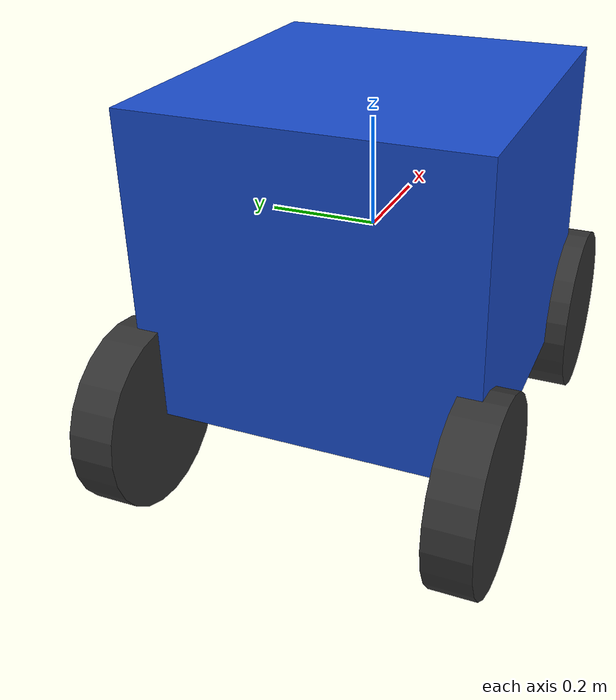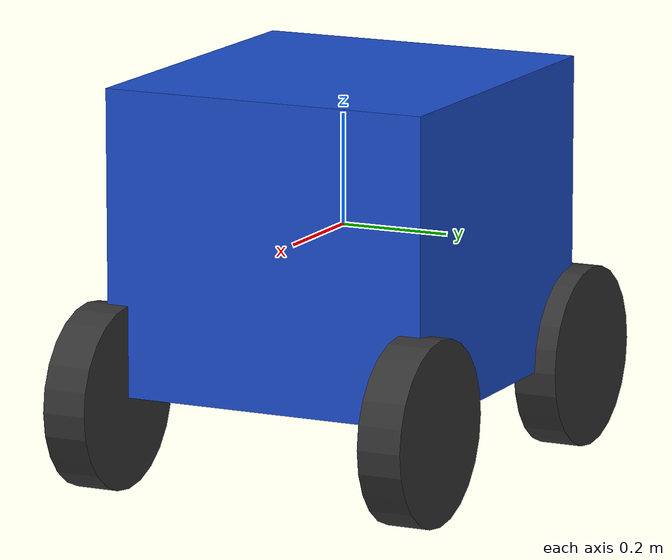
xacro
<?xml version="1.0"?>
<robot name="hunter_robot" xmlns:xacro="http://www.ros.org/wiki/xacro">

  <!-- Hunter 차량 상수 -->
  <xacro:property name="PI" value="3.1415926535897931"/>
  <xacro:property name="wheelbase" value="0.65"/>  <!-- Hunter wheelbase -->
  <xacro:property name="track" value="0.605"/>     <!-- Hunter track -->
  <xacro:property name="wheel_radius" value="0.165"/> <!-- Hunter wheel radius -->
  <xacro:property name="vehicle_height" value="0.55"/>
  <xacro:property name="lidar_height" value="0.1"/>  <!-- IMU 위로 10cm -->

  <!-- IMU Link (LIO-SAM에서 실제 base_link 역할, TF tree의 최상위) -->
  <link name="imu_link">
    <visual>
      <geometry>
        <box size="${wheelbase} ${track} ${vehicle_height}"/>
      </geometry>
      <material name="hunter_blue">
        <color rgba="0.1 0.3 0.8 1"/>
      </material>
    </visual>
    <collision>
      <geometry>
        <box size="${wheelbase} ${track} ${vehicle_height}"/>
      </geometry>
    </collision>
    <inertial>
      <mass value="80"/>
      <inertia ixx="5.0" ixy="0.0" ixz="0.0" iyy="8.0" iyz="0.0" izz="10.0"/>
    </inertial>
  </link>

  <!-- Base Link (시각화용, imu_link와 동일한 위치) -->
  <link name="base_link">
    <visual>
      <geometry>
        <box size="0.05 0.05 0.02"/>
      </geometry>
      <material name="red">
        <color rgba="0.8 0.2 0.2 1"/>
      </material>
    </visual>
  </link>

  <joint name="imu_to_base" type="fixed">
    <parent link="imu_link"/>
    <child link="base_link"/>
    <origin xyz="0 0 0" rpy="0 0 0"/> <!-- 동일한 위치 -->
  </joint>

  <!-- LiDAR 센서 프레임 -->
  <link name="os_sensor">
    <visual>
      <geometry>
        <cylinder radius="0.06" length="0.08"/>
      </geometry>
      <material name="black">
        <color rgba="0.1 0.1 0.1 1"/>
      </material>
    </visual>
  </link>

  <joint name="os_sensor_joint" type="fixed">
    <parent link="imu_link"/>
    <child link="os_sensor"/>
    <origin xyz="0 0 ${lidar_height}" rpy="0 0 0"/> <!-- IMU에서 LiDAR까지 Z+ 10cm -->
  </joint>

  <link name="os_lidar"/>
  <joint name="os_lidar_joint" type="fixed">
    <parent link="os_sensor"/>
    <child link="os_lidar"/>
    <origin xyz="0 0 0" rpy="0 0 0"/>
  </joint>

  <link name="os_imu"/>
  <joint name="os_imu_joint" type="fixed">
    <parent link="os_sensor"/>
    <child link="os_imu"/>
    <origin xyz="0 0 0" rpy="0 0 0"/>
  </joint>

  <!-- Hunter 차량 바퀴들 -->
  <!-- 전륜 좌측 -->
  <link name="front_left_wheel">
    <visual>
      <geometry>
        <cylinder radius="${wheel_radius}" length="0.08"/>
      </geometry>
      <material name="wheel_black">
        <color rgba="0.2 0.2 0.2 1"/>
      </material>
    </visual>
    <collision>
      <geometry>
        <cylinder radius="${wheel_radius}" length="0.08"/>
      </geometry>
    </collision>
  </link>

  <!-- 전륜 우측 -->
  <link name="front_right_wheel">
    <visual>
      <geometry>
        <cylinder radius="${wheel_radius}" length="0.08"/>
      </geometry>
      <material name="wheel_black">
        <color rgba="0.2 0.2 0.2 1"/>
      </material>
    </visual>
    <collision>
      <geometry>
        <cylinder radius="${wheel_radius}" length="0.08"/>
      </geometry>
    </collision>
  </link>

  <!-- 후륜 좌측 -->
  <link name="rear_left_wheel">
    <visual>
      <geometry>
        <cylinder radius="${wheel_radius}" length="0.08"/>
      </geometry>
      <material name="wheel_black">
        <color rgba="0.2 0.2 0.2 1"/>
      </material>
    </visual>
    <collision>
      <geometry>
        <cylinder radius="${wheel_radius}" length="0.08"/>
      </geometry>
    </collision>
  </link>

  <!-- 후륜 우측 -->
  <link name="rear_right_wheel">
    <visual>
      <geometry>
        <cylinder radius="${wheel_radius}" length="0.08"/>
      </geometry>
      <material name="wheel_black">
        <color rgba="0.2 0.2 0.2 1"/>
      </material>
    </visual>
    <collision>
      <geometry>
        <cylinder radius="${wheel_radius}" length="0.08"/>
      </geometry>
    </collision>
  </link>

  <!-- 바퀴 조인트들 (모두 imu_link에 연결) -->
  <joint name="front_left_wheel_joint" type="continuous">
    <parent link="imu_link"/>
    <child link="front_left_wheel"/>
    <origin xyz="${wheelbase/2} ${track/2} ${-vehicle_height/2}" rpy="${PI/2} 0 0"/>
    <axis xyz="0 0 1"/>
  </joint>

  <joint name="front_right_wheel_joint" type="continuous">
    <parent link="imu_link"/>
    <child link="front_right_wheel"/>
    <origin xyz="${wheelbase/2} ${-track/2} ${-vehicle_height/2}" rpy="${PI/2} 0 0"/>
    <axis xyz="0 0 1"/>
  </joint>

  <joint name="rear_left_wheel_joint" type="continuous">
    <parent link="imu_link"/>
    <child link="rear_left_wheel"/>
    <origin xyz="${-wheelbase/2} ${track/2} ${-vehicle_height/2}" rpy="${PI/2} 0 0"/>
    <axis xyz="0 0 1"/>
  </joint>

  <joint name="rear_right_wheel_joint" type="continuous">
    <parent link="imu_link"/>
    <child link="rear_right_wheel"/>
    <origin xyz="${-wheelbase/2} ${-track/2} ${-vehicle_height/2}" rpy="${PI/2} 0 0"/>
    <axis xyz="0 0 1"/>
  </joint>

</robot>
